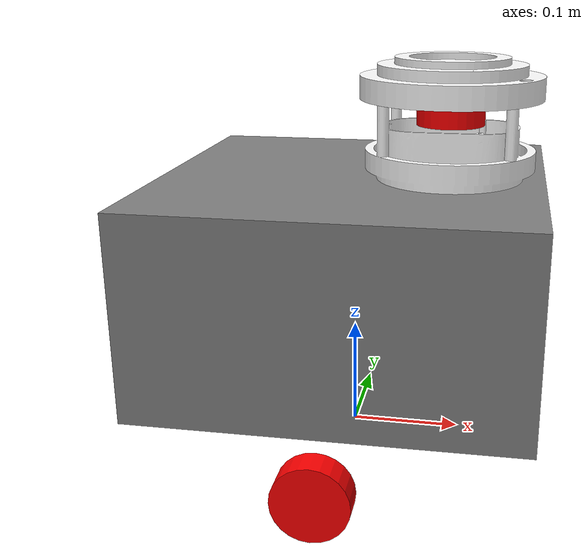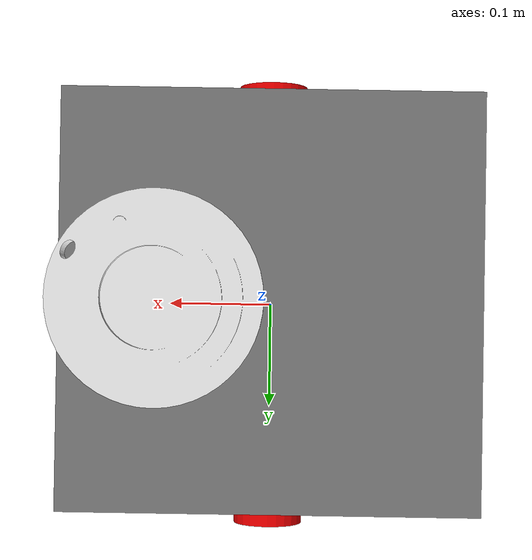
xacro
<?xml version="1.0"?>
<robot name="denis" xmlns:xacro="http://www.ros.org/wiki/xacro">
    <xacro:arg name="use_ros2_control" default="true" />
    <xacro:arg name="sim_mode" default="false" />

    <xacro:if value="$(arg use_ros2_control)">
        <xacro:include filename="$(find description)/ros2_control/ros2_control.xacro" />
    </xacro:if>

    <xacro:unless value="$(arg use_ros2_control)">
        <xacro:include filename="gazebo_control.xacro" />
    </xacro:unless>

    <xacro:include filename="properties.xacro" />
    <xacro:include filename="materials.xacro" />
    <xacro:include filename="inertia.xacro" />
    <xacro:include filename="lidar.xacro" />
    <xacro:include filename="head.xacro" />
    <xacro:include filename="base.xacro" />
</robot>

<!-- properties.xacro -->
<robot xmlns:xacro="http://www.ros.org/wiki/xacro">
    <xacro:property name="base_height" value="0.18" />
    <xacro:property name="base_width" value="0.34" />
    <xacro:property name="base_length" value="0.34" />
    <xacro:property name="wheel_radius" value="0.0325" />
    <xacro:property name="wheel_length" value="0.025" />
    <xacro:property name="sphere_radius" value="0.0325" />
</robot>

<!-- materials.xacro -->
<robot xmlns:xacro="http://www.ros.org/wiki/xacro">

    <!-- wheels - face(for now) -->
    <material name="red">
        <color rgba="1 0 0 1"/>
    </material>
    <!-- base chasis -->
    <material name="grey">
        <color rgba="0.5 0.5 0.5 1"/>
    </material>

    <material name="white">
        <color rgba="1 1 1 1"/>
    </material>
</robot>

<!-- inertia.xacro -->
<robot xmlns:xacro="http://www.ros.org/wiki/xacro">

    <xacro:macro name="box_inertia" params="m x y z o_xyz o_rpy">
        <inertial>
            <origin xyz="${o_xyz}" rpy="${o_rpy}" />
            <mass value="${m}" />
            <inertia ixx="${(m/12) * (y*y + z*z)}" ixy="0" ixz="0"
                     iyy="${(m/12) * (x*x + z*z)}" iyz="0"
                     izz="${(m/12) * (x*x + y*y)}" />
        </inertial>
    </xacro:macro>

    <xacro:macro name="sphere_inertia" params="m r o_xyz o_rpy">
        <inertial>
            <origin xyz="${o_xyz}" rpy="${o_rpy}" />
            <mass value="${m}" />
            <inertia ixx="${(2/5) * m * (r*r)}" ixy="0" ixz="0"
                     iyy="${(2/5) * m * (r*r)}" iyz="0"
                     izz="${(2/5) * m * (r*r)}" />
        </inertial>
    </xacro:macro>

    <xacro:macro name="cylinder_inertia" params="m r h o_xyz o_rpy">
        <inertial>
            <origin xyz="${o_xyz}" rpy="${o_rpy}" />
            <mass value="${m}" />
            <inertia ixx="${(m/12) * (3*r*r + h*h)}" ixy="0" ixz="0"
                     iyy="${(m/12) * (3*r*r + h*h)}" iyz="0"
                     izz="${(m/2) * (r*r)}" />
        </inertial>
    </xacro:macro>

</robot>

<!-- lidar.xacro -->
<robot xmlns:xacro="http://www.ros.org/xacro/wiki">

    <link name="rplidar_base_link">
        <visual>
            <origin xyz="0 0 0" rpy="0 0 0" />
            <geometry>
                <mesh filename="package://description/mashes/lidar_base.stl" scale="0.001 0.001 0.001" />
            </geometry>
            <material name="white" />
        </visual>
        <collision>
            <origin xxyz="0 0 0" rpy="0 0 0" />
            <geometry>
                <mesh filename="package://description/mashes/lidar_base.stl" scale="0.001 0.001 0.001" />
            </geometry>
        </collision>
        <xacro:box_inertia m="0.11" x="0.15" y="0.15" z="0.072" o_xyz="0 0 0" o_rpy="0 0 0" />
    </link>

    <link name="rplidar">
        <visual>
            <origin xyz="0 0 0" rpy="0 0 0" />
            <geometry>
                <cylinder radius="0.03" length="0.02" />
            </geometry>
            <material name="red" />
        </visual>
        <collision>
            <origin xyz="0 0 0" rpy="0 0 0" />
            <geometry>
                <cylinder radius="0.03" length="0.02" />
            </geometry>
        </collision>
        <xacro:box_inertia m="0.01" x="0.06" y="0.06" z="0.02" o_xyz="0 0 0" o_rpy="0 0 0" />
    </link>
</robot>

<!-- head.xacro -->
<robot xmlns:xacro="http://www.ros.org/wiki/xacro">
    <link name="head_base">
        <visual>
            <origin xyz="0 0 0" rpy="0 0 0" />
            <geometry>
                <mesh filename="package://description/mashes/head_base.stl" scale="0.001 0.001 0.001"/>
            </geometry>
            <material name="white" />
        </visual>
        <collision>
            <origin xyz="0 0 0" rpy="0 0 0" />
            <geometry>
                <mesh filename="package://description/mashes/head_base.stl" scale="0.001 0.001 0.001"/>
            </geometry>
        </collision>
        <xacro:box_inertia m="0.11" x="0.16" y="0.16" z="0.03540" o_xyz="0 0 0" o_rpy="0 0 0" />
    </link>
</robot>

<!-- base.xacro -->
<robot xmlns:xacro="http://www.ros.org/wiki/xacro">
    <link name="base_footprint" />

    <link name="base_link">
        <visual>
            <geometry>
                <box size="${base_width} ${base_length} ${base_height}" />
            </geometry>
            <material name="grey" />
            <origin xyz="0 0 ${base_height/2}" rpy="0 0 0" />
        </visual>
        <collision>
            <geometry>
                <box size="${base_width} ${base_length} ${base_height}" />
            </geometry>
            <origin xyz="0 0 ${base_height/2}" rpy="0 0 0" />
        </collision>
        <xacro:box_inertia m="1.5" x="${base_width}" y="${base_length}" z="${base_height}"
            o_xyz="0 0 ${base_height/2}" o_rpy="0 0 0" />
    </link>

    <link name="left_wheel_link">
        <visual>
            <geometry>
                <cylinder radius="${wheel_radius}" length="${wheel_length}" />
            </geometry>
            <material name="red" />
            <origin xyz="0 0 0" rpy="${pi/2} 0 0" />
        </visual>

        <collision>
            <geometry>
                <cylinder radius="${wheel_radius}" length="${wheel_length}" />
            </geometry>
            <origin xyz="0 0 0" rpy="${pi/2} 0 0" />
        </collision>

        <xacro:cylinder_inertia m="0.030" r="${wheel_radius}" h="${wheel_length}" o_xyz="0 0 0"
            o_rpy="0 0 0" />
    </link>

    <link name="right_wheel_link">
        <visual>
            <geometry>
                <cylinder radius="${wheel_radius}" length="${wheel_length}" />
            </geometry>
            <material name="red" />
            <origin xyz="0 0 0" rpy="${pi/2} 0 0" />
        </visual>
        <collision>
            <geometry>
                <cylinder radius="${wheel_radius}" length="${wheel_length}" />
            </geometry>
            <origin xyz="0 0 0" rpy="${pi/2} 0 0" />
        </collision>
        <xacro:cylinder_inertia m="0.030" r="${wheel_radius}" h="${wheel_length}" o_xyz="0 0 0"
            o_rpy="0 0 0" />
    </link>

    <link name="front_sphere_link"> <!-- caster wheel -->
        <visual>
            <geometry>
                <sphere radius="${sphere_radius}" />
            </geometry>
            <origin xyz="0 0 0" rpy="0 0 0" />
            <material name="red" />
        </visual>

        <collision>
            <geometry>
                <sphere radius="${sphere_radius}" />
            </geometry>
            <origin xyz="0 0 0" rpy="0 0 0" />
        </collision>
        <xacro:sphere_inertia m="0.030" r="${sphere_radius}" o_xyz="0 0 0" o_rpy="0 0 0" />
    </link>

    <link name="back_sphere_link"> <!-- caster wheel -->
        <visual>
            <geometry>
                <sphere radius="${sphere_radius}" />
            </geometry>
            <origin xyz="0 0 0" rpy="0 0 0" />
            <material name="red" />
        </visual>

        <collision>
            <geometry>
                <sphere radius="${sphere_radius}" />
            </geometry>
            <origin xyz="0 0 0" rpy="0 0 0" />
        </collision>
        <xacro:sphere_inertia m="0.030" r="${sphere_radius}" o_xyz="0 0 0" o_rpy="0 0 0" />
    </link>

    <joint name="base_footprint_base_link_joint" type="fixed">
        <parent link="base_footprint" />
        <child link="base_link" />
        <origin xyz="0 0 ${0.002 + 2 * wheel_radius}" rpy="0 0 0" />
    </joint>

    <joint name="base_link_left_wheel_joint" type="continuous">
        <parent link="base_link" />
        <child link="left_wheel_link" />
        <origin xyz="0 ${base_length/2 + wheel_length/2 + 0.015} -${0.002 + wheel_radius}"
            rpy="0 0 0" />
        <axis xyz="0 1 0" />
    </joint>

    <joint name="base_link_right_wheel_joint" type="continuous">
        <parent link="base_link" />
        <child link="right_wheel_link" />
        <origin xyz="0 -${base_length/2 + wheel_length/2 + 0.015} -${0.002 + wheel_radius}"
            rpy="0 0 0" />
        <axis xyz="0 1 0" />
    </joint>

    <joint name="base_link_front_sphere_joint" type="fixed">
        <parent link="base_link" />
        <child link="front_sphere_link" />
        <origin xyz="${base_width/2 - 0.04} 0 -${sphere_radius + 0.002}" rpy="0 0 0" />
    </joint>

    <joint name="base_link_back_sphere_joint" type="fixed">
        <parent link="base_link" />
        <child link="back_sphere_link" />
        <origin xyz="-${base_width/2 - 0.04} 0 -${sphere_radius + 0.002}" rpy="0 0 0" />
    </joint>

    <joint name="base_link_rplidar_base_link" type="fixed">
        <parent link="base_link" />
        <child link="rplidar_base_link" />
        <origin xyz="${base_width/4} 0 ${base_height-0.005}" rpy="0 0 0" />
    </joint>

    <joint name="base_link_rplidar" type="fixed">
        <parent link="base_link" />
        <child link="rplidar" />
        <origin xyz="${base_width/4} 0 ${base_height+0.057}" rpy="0 0 0" />
    </joint>

    <joint name="base_link_head_base" type="fixed">
        <parent link="base_link" />
        <child link="head_base" />
        <origin xyz="${base_width/4} 0 ${base_height+0.07}" rpy="0 0 0" />
    </joint>
</robot>
